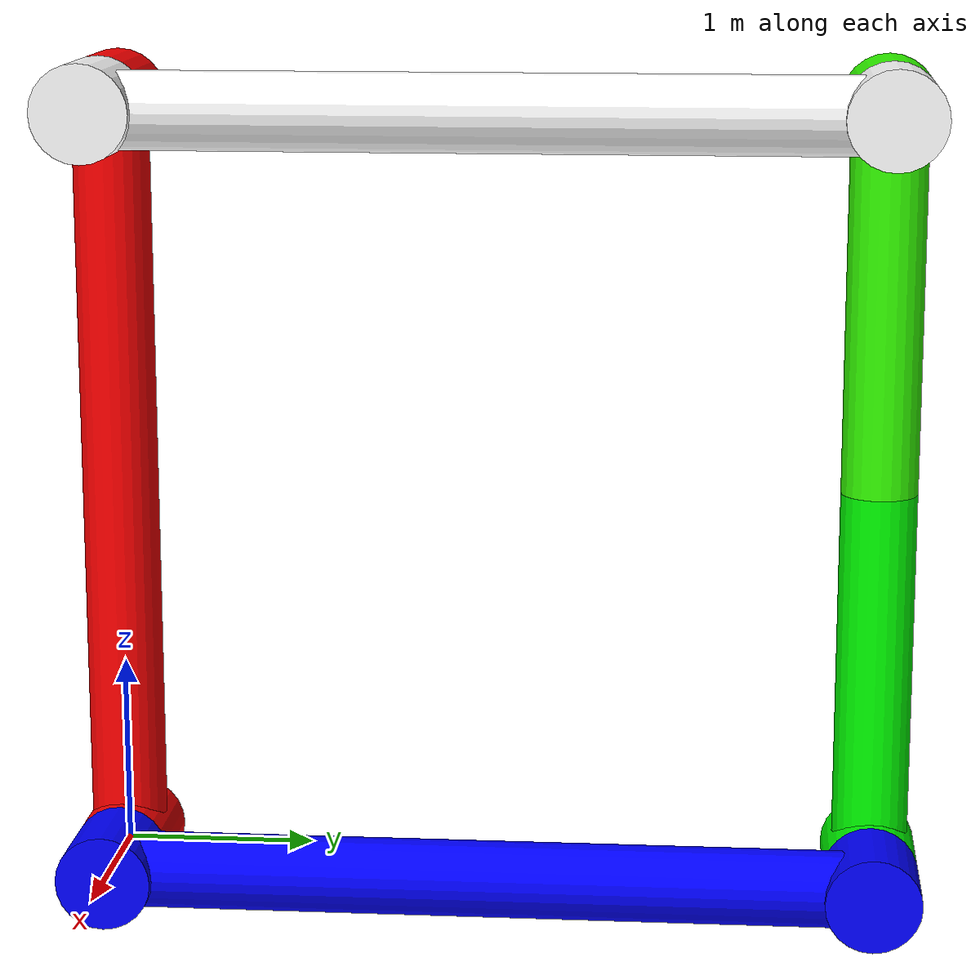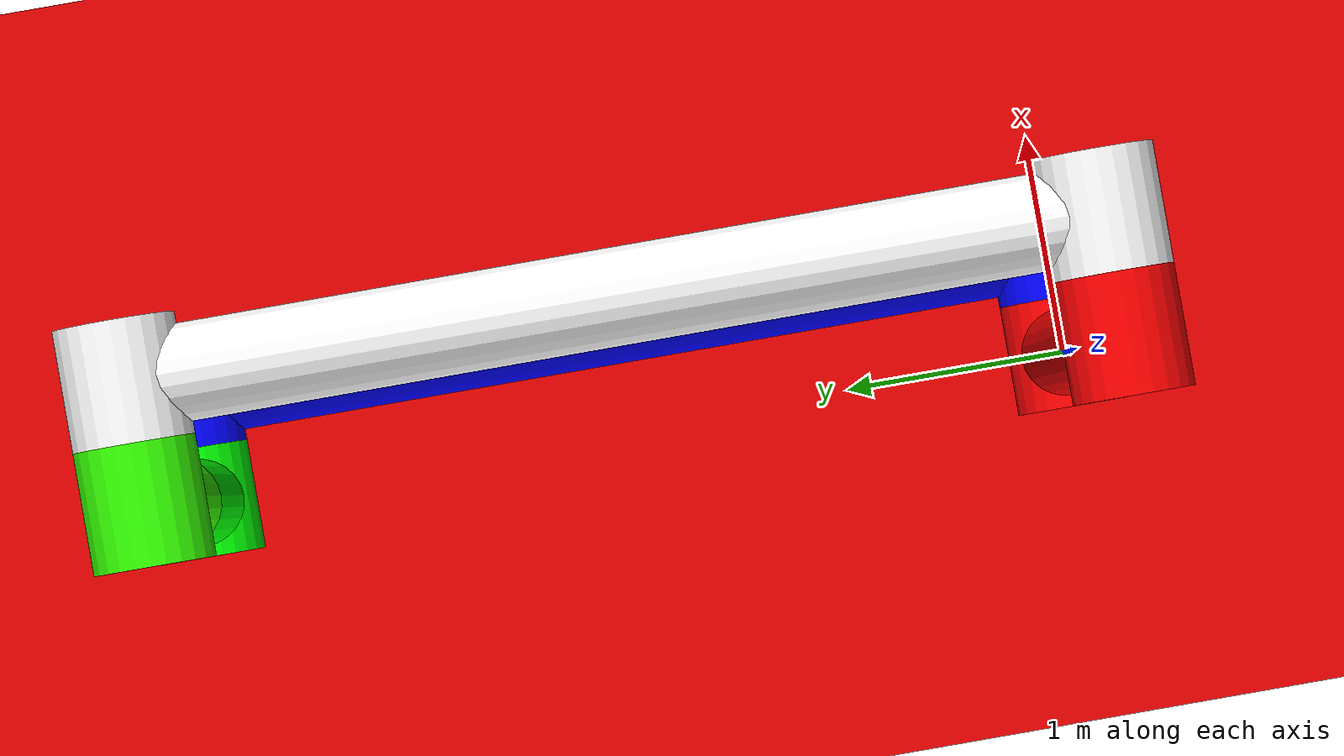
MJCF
<mujoco>
    <compiler inertiafromgeom="true"/>
    <option timestep="0.002" />
    <asset>
        <material name="blue__" rgba="0 0 1 1" />
        <material name="red___" rgba="1 0 0 1" />
        <material name="white_" rgba="1 1 1 1" />
        <material name="green1" rgba="0 1 0 1" />
        <material name="green2" rgba="0.2 1 0 1" />

    </asset>
    <worldbody>
        <geom type="box" size="10 10 0.1" pos="0 0 -2" rgba=".9 0 0 1" />
        <light diffuse=".5 .5 .5" pos="0 0 3" dir="0 0 -1" />

        <body name="link_1" pos="0 0 0">
            <geom type="cylinder" size=".2    2" pos="0 0 2" euler="0  0 0" material="red___" />
            <geom type="cylinder" size=".25 .25" pos="0 0 4" euler="0 90 0" material="red___" />
            <geom type="cylinder" size=".25 .25" pos="0 0 0" euler="0 90 0" material="red___" />

            <body name="link_2" pos="0.5 0 0" euler="0 0 0">
                <joint name="hinge_1" pos="0 0 0" axis="1 0 0" />
                <geom type="cylinder" size=".2    2" pos="0 2 0" euler="90 0 0" material="blue__" />
                <geom type="cylinder" size=".25 .25" pos="0 4 0" euler="0 90 0" material="blue__" />
                <geom type="cylinder" size=".25 .25" pos="0 0 0" euler="0 90 0" material="blue__" />

                <body name="link_3" pos="-0.5 4 0" euler="0 0 0">
                    <joint name="hinge_2" pos="0 0 0" axis="1 0 0" />
                    <geom type="cylinder" size=".2    1" pos="0 0 1" euler="0  0 0" material="green1" />
                    <geom type="cylinder" size=".25 .25" pos="0 0 0" euler="0 90 0" material="green1" />
                    <site name="site1" pos="0 0 2" euler="0 0 0"/>
                </body>
            </body>

            <body name="link_4" pos="0.5 0 4" euler="0 0 0">
                <joint name="hinge_3" pos="0 0 0" axis="1 0 0" />
                <geom type="cylinder" size=".2    2" pos="0 2 0" euler="90 0 0" material="white_" />
                <geom type="cylinder" size=".25 .25" pos="0 0 0" euler="0 90 0" material="white_" />
                <geom type="cylinder" size=".25 .25" pos="0 4 0" euler="0 90 0" material="white_" />

                <body name="link_5" pos="-0.5 4 0" euler="0 0 0">
                    <joint name="hinge_4" pos="0 0 0" axis="1 0 0" />
                    <geom type="cylinder" size=".2    1" pos="0 0 -1" euler="0 0 0" material="green2" />
                    <geom type="cylinder" size=".25 .25" pos="0 0  0" euler="0 90 0" material="green2" />
                    <site name="site2" pos="0 0 -2" euler="0 0 0"/>
                </body>
            </body>
        </body>
    </worldbody>

    <equality>
        <weld name="kinematic_weld_anchor" active="true" body1="link_3" body2="link_5" anchor="0 0 -2" />
        <weld name="kinematic_weld_anchor_relpose" active="true" body1="link_3" body2="link_5" anchor="0 0 -2" relpose="0 0 4 1 0 0 0"/>
        <weld name="kinematic_weld_site" active="true" site1="site1" site2="site2"/>
    </equality>

</mujoco>
